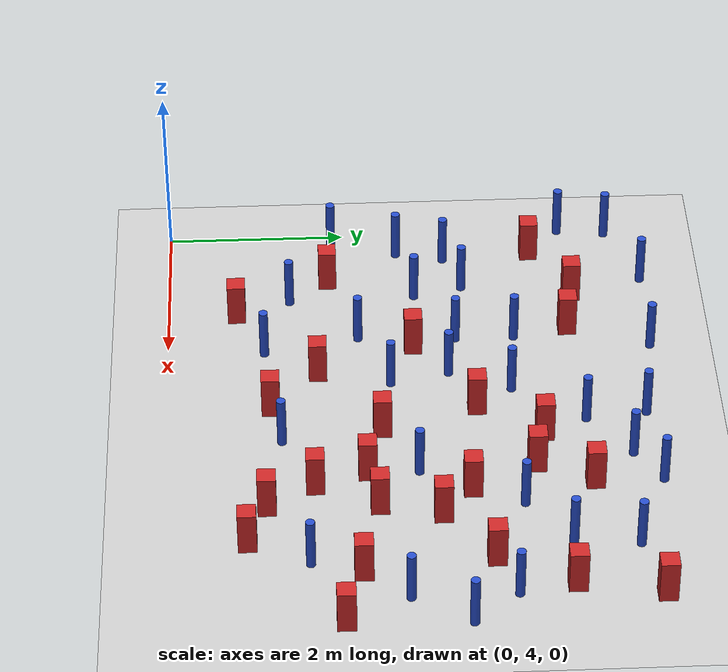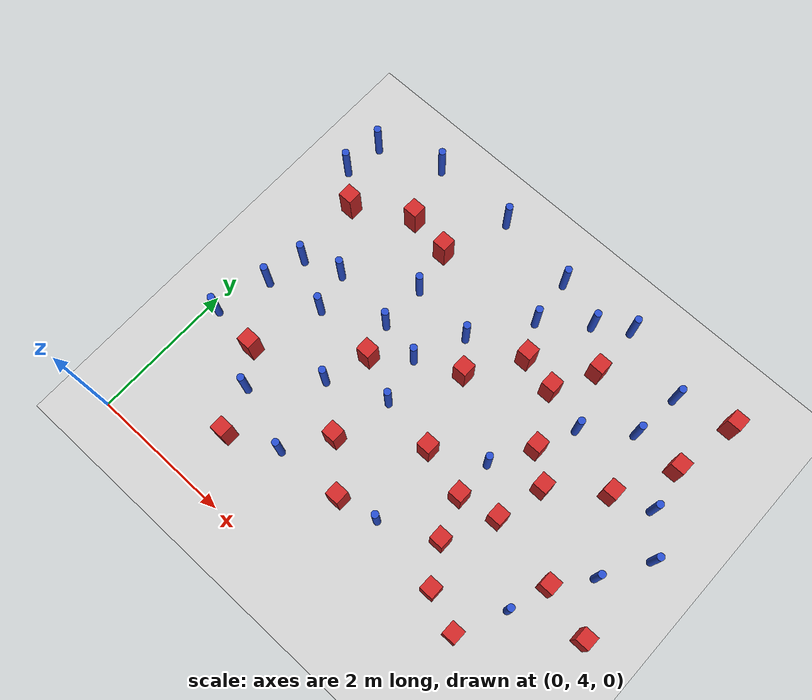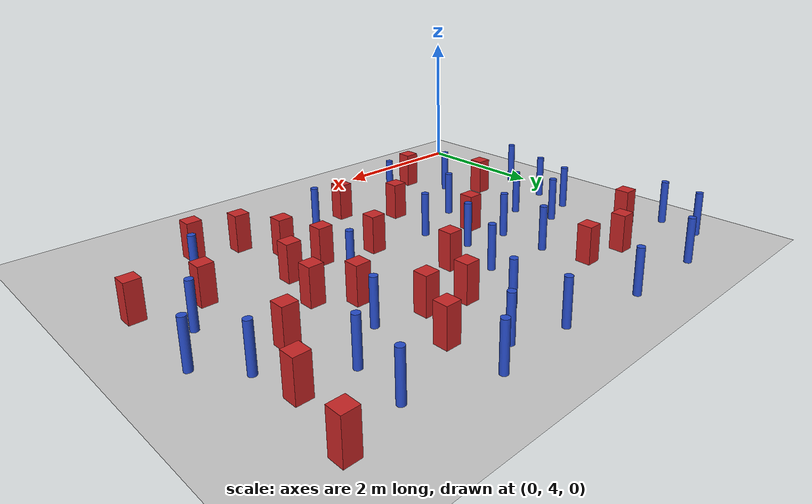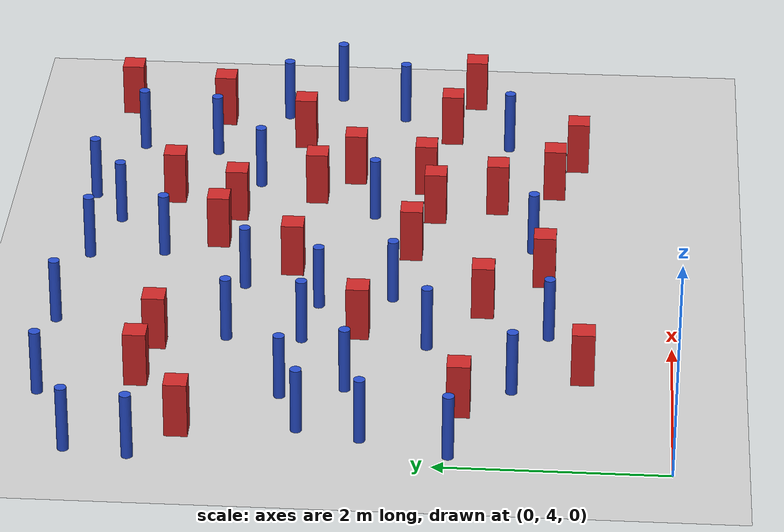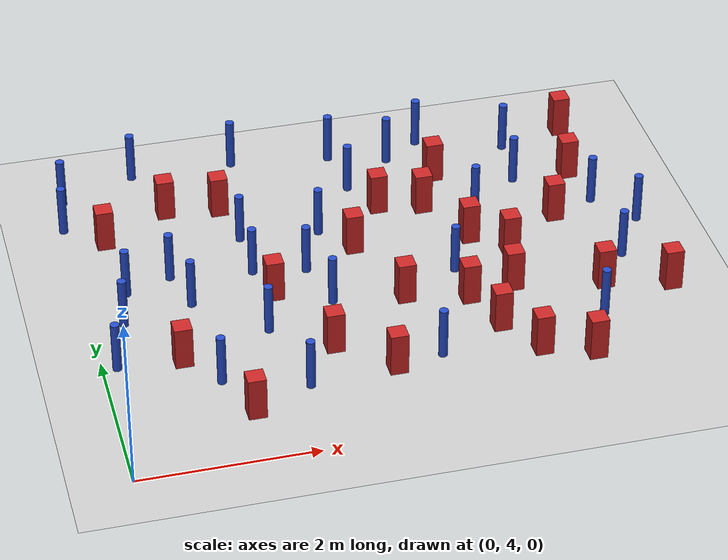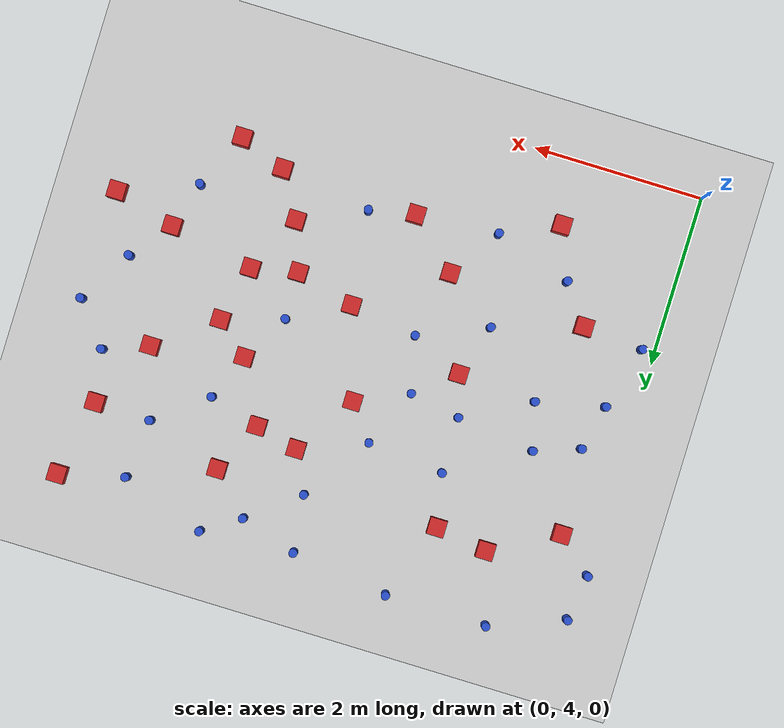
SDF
<sdf version="1.6">
 <world name="default">
  <model name="ground_plane">
   <static>1</static>
   <link name="link">
    <collision name="collision">
     <geometry><plane><normal>0 0 1</normal><size>100 100</size></plane></geometry>
     <surface><friction><ode><mu>100</mu><mu2>50</mu2></ode></friction></surface>
    </collision>
    <visual name="visual">
     <cast_shadows>0</cast_shadows>
     <geometry><plane><normal>0 0 1</normal><size>100 100</size></plane></geometry>
     <material>
      <ambient>1.0 1.0 1.0 1.0</ambient>
      <diffuse>0.8 0.8 0.8 1.0</diffuse>
      <specular>0.01 0.01 0.01 1.000000</specular>
     </material>
    </visual>
   </link>
  </model>
  <model name="pole_obstacle6">
   <static>true</static>
   <pose>5.31308044122 8.27978199342 2.88873142074e-08 -9.9053668967e-09 4.60219948993e-07 -1.20965994957e-07</pose>
   <link name="link">
    <pose>0 0 0.3 0 -0 0</pose>
    <inertial>
     <mass>1</mass>
     <inertia><ixx>0.145833</ixx><ixy>0</ixy><ixz>0</ixz><iyy>0.145833</iyy><iyz>0</iyz><izz>0.125</izz></inertia>
    </inertial>
    <collision name="collision">
     <geometry><cylinder><radius>0.05</radius><length>.6</length></cylinder></geometry>
    </collision>
    <visual name="visual">
     <geometry><cylinder><radius>0.05</radius><length>.6</length></cylinder></geometry>
     <material>
      <script><name>Gazebo/Blue</name><uri>file://media/materials/scripts/gazebo.material</uri></script>
     </material>
    </visual>
   </link>
  </model>
  <model name="square_post_obstacle20">
   <static>true</static>
   <pose>4.71864207288 6.27564636523 8.22691968438e-08 7.2212513382e-06 -7.54495500217e-07 2.29674213826e-05</pose>
   <link name="link">
    <pose>0 0 0.25 0 -0 0</pose>
    <inertial>
     <mass>100</mass>
     <inertia>
      <ixx>0.166667</ixx>
      <ixy>0</ixy>
      <ixz>0</ixz>
      <iyy>0.166667</iyy>
      <iyz>0</iyz>
      <izz>0.166667</izz>
     </inertia>
    </inertial>
    <collision name="collision"><geometry><box><size>.2 .2 .5</size></box></geometry></collision>
    <visual name="visual">
     <geometry><box><size>.2 .2 .5</size></box></geometry>
     <material>
      <script><name>Gazebo/Red</name><uri>file://media/materials/scripts/gazebo.material</uri></script>
     </material>
    </visual>
   </link>
  </model>
  <model name="pole_obstacle12">
   <static>true</static>
   <pose>1.02377601119 7.3422433045 2.88873142074e-08 -9.90536689905e-09 4.60219948988e-07 -1.20965994961e-07</pose>
   <link name="link">
    <pose>0 0 0.3 0 -0 0</pose>
    <inertial>
     <mass>1</mass>
     <inertia><ixx>0.145833</ixx><ixy>0</ixy><ixz>0</ixz><iyy>0.145833</iyy><iyz>0</iyz><izz>0.125</izz></inertia>
    </inertial>
    <collision name="collision">
     <geometry><cylinder><radius>0.05</radius><length>.6</length></cylinder></geometry>
    </collision>
    <visual name="visual">
     <geometry><cylinder><radius>0.05</radius><length>.6</length></cylinder></geometry>
     <material>
      <script><name>Gazebo/Blue</name><uri>file://media/materials/scripts/gazebo.material</uri></script>
     </material>
    </visual>
   </link>
  </model>
  <model name="square_post_obstacle22">
   <static>true</static>
   <pose>3.15596366017 7.39459218269 8.22691968438e-08 7.2212513382e-06 -7.54495500217e-07 2.29674213826e-05</pose>
   <link name="link">
    <pose>0 0 0.25 0 -0 0</pose>
    <inertial>
     <mass>100</mass>
     <inertia>
      <ixx>0.166667</ixx>
      <ixy>0</ixy>
      <ixz>0</ixz>
      <iyy>0.166667</iyy>
      <iyz>0</iyz>
      <izz>0.166667</izz>
     </inertia>
    </inertial>
    <collision name="collision"><geometry><box><size>.2 .2 .5</size></box></geometry></collision>
    <visual name="visual">
     <geometry><box><size>.2 .2 .5</size></box></geometry>
     <material>
      <script><name>Gazebo/Red</name><uri>file://media/materials/scripts/gazebo.material</uri></script>
     </material>
    </visual>
   </link>
  </model>
  <model name="square_post_obstacle25">
   <static>true</static>
   <pose>4.69491276514 5.0820935779 8.22691968438e-08 7.2212513382e-06 -7.54495500217e-07 2.29674213826e-05</pose>
   <link name="link">
    <pose>0 0 0.25 0 -0 0</pose>
    <inertial>
     <mass>100</mass>
     <inertia>
      <ixx>0.166667</ixx>
      <ixy>0</ixy>
      <ixz>0</ixz>
      <iyy>0.166667</iyy>
      <iyz>0</iyz>
      <izz>0.166667</izz>
     </inertia>
    </inertial>
    <collision name="collision"><geometry><box><size>.2 .2 .5</size></box></geometry></collision>
    <visual name="visual">
     <geometry><box><size>.2 .2 .5</size></box></geometry>
     <material>
      <script><name>Gazebo/Red</name><uri>file://media/materials/scripts/gazebo.material</uri></script>
     </material>
    </visual>
   </link>
  </model>
  <model name="square_post_obstacle26">
   <static>true</static>
   <pose>2.51529953633 5.66592591669 8.22691968438e-08 7.2212513382e-06 -7.54495500217e-07 2.29674213826e-05</pose>
   <link name="link">
    <pose>0 0 0.25 0 -0 0</pose>
    <inertial>
     <mass>100</mass>
     <inertia>
      <ixx>0.166667</ixx>
      <ixy>0</ixy>
      <ixz>0</ixz>
      <iyy>0.166667</iyy>
      <iyz>0</iyz>
      <izz>0.166667</izz>
     </inertia>
    </inertial>
    <collision name="collision"><geometry><box><size>.2 .2 .5</size></box></geometry></collision>
    <visual name="visual">
     <geometry><box><size>.2 .2 .5</size></box></geometry>
     <material>
      <script><name>Gazebo/Red</name><uri>file://media/materials/scripts/gazebo.material</uri></script>
     </material>
    </visual>
   </link>
  </model>
  <model name="square_post_obstacle27">
   <static>true</static>
   <pose>6.43822635185 5.87308014322 8.22691968438e-08 7.2212513382e-06 -7.54495500217e-07 2.29674213826e-05</pose>
   <link name="link">
    <pose>0 0 0.25 0 -0 0</pose>
    <inertial>
     <mass>100</mass>
     <inertia>
      <ixx>0.166667</ixx>
      <ixy>0</ixy>
      <ixz>0</ixz>
      <iyy>0.166667</iyy>
      <iyz>0</iyz>
      <izz>0.166667</izz>
     </inertia>
    </inertial>
    <collision name="collision"><geometry><box><size>.2 .2 .5</size></box></geometry></collision>
    <visual name="visual">
     <geometry><box><size>.2 .2 .5</size></box></geometry>
     <material>
      <script><name>Gazebo/Red</name><uri>file://media/materials/scripts/gazebo.material</uri></script>
     </material>
    </visual>
   </link>
  </model>
  <model name="pole_obstacle18">
   <static>true</static>
   <pose>2.69266483658 6.46979249328 2.88873142074e-08 -9.90536689859e-09 4.60219948989e-07 -1.20965994961e-07</pose>
   <link name="link">
    <pose>0 0 0.3 0 -0 0</pose>
    <inertial>
     <mass>1</mass>
     <inertia><ixx>0.145833</ixx><ixy>0</ixy><ixz>0</ixz><iyy>0.145833</iyy><iyz>0</iyz><izz>0.125</izz></inertia>
    </inertial>
    <collision name="collision">
     <geometry><cylinder><radius>0.05</radius><length>.6</length></cylinder></geometry>
    </collision>
    <visual name="visual">
     <geometry><cylinder><radius>0.05</radius><length>.6</length></cylinder></geometry>
     <material>
      <script><name>Gazebo/Blue</name><uri>file://media/materials/scripts/gazebo.material</uri></script>
     </material>
    </visual>
   </link>
  </model>
  <model name="square_post_obstacle32">
   <static>true</static>
   <pose>4.41538164967 8.58481042743 8.22691968438e-08 7.22125133819e-06 -7.54495500217e-07 2.29674213826e-05</pose>
   <link name="link">
    <pose>0 0 0.25 0 -0 0</pose>
    <inertial>
     <mass>100</mass>
     <inertia>
      <ixx>0.166667</ixx>
      <ixy>0</ixy>
      <ixz>0</ixz>
      <iyy>0.166667</iyy>
      <iyz>0</iyz>
      <izz>0.166667</izz>
     </inertia>
    </inertial>
    <collision name="collision"><geometry><box><size>.2 .2 .5</size></box></geometry></collision>
    <visual name="visual">
     <geometry><box><size>.2 .2 .5</size></box></geometry>
     <material>
      <script><name>Gazebo/Red</name><uri>file://media/materials/scripts/gazebo.material</uri></script>
     </material>
    </visual>
   </link>
  </model>
  <model name="pole_obstacle29">
   <static>true</static>
   <pose>5.54738437357 5.52844757061 2.88873142074e-08 -9.90536690842e-09 4.60219948965e-07 -1.20965994976e-07</pose>
   <link name="link">
    <pose>0 0 0.3 0 -0 0</pose>
    <inertial>
     <mass>1</mass>
     <inertia><ixx>0.145833</ixx><ixy>0</ixy><ixz>0</ixz><iyy>0.145833</iyy><iyz>0</iyz><izz>0.125</izz></inertia>
    </inertial>
    <collision name="collision">
     <geometry><cylinder><radius>0.05</radius><length>.6</length></cylinder></geometry>
    </collision>
    <visual name="visual">
     <geometry><cylinder><radius>0.05</radius><length>.6</length></cylinder></geometry>
     <material>
      <script><name>Gazebo/Blue</name><uri>file://media/materials/scripts/gazebo.material</uri></script>
     </material>
    </visual>
   </link>
  </model>
  <model name="square_post_obstacle35">
   <static>true</static>
   <pose>0.873529759677 5.81037200043 8.22691968438e-08 7.2212513382e-06 -7.54495500217e-07 2.29674213826e-05</pose>
   <link name="link">
    <pose>0 0 0.25 0 -0 0</pose>
    <inertial>
     <mass>100</mass>
     <inertia>
      <ixx>0.166667</ixx>
      <ixy>0</ixy>
      <ixz>0</ixz>
      <iyy>0.166667</iyy>
      <iyz>0</iyz>
      <izz>0.166667</izz>
     </inertia>
    </inertial>
    <collision name="collision"><geometry><box><size>.2 .2 .5</size></box></geometry></collision>
    <visual name="visual">
     <geometry><box><size>.2 .2 .5</size></box></geometry>
     <material>
      <script><name>Gazebo/Red</name><uri>file://media/materials/scripts/gazebo.material</uri></script>
     </material>
    </visual>
   </link>
  </model>
  <model name="square_post_obstacle38">
   <static>true</static>
   <pose>1.45187493972 4.77025773056 8.22691968438e-08 7.2212513382e-06 -7.54495500217e-07 2.29674213826e-05</pose>
   <link name="link">
    <pose>0 0 0.25 0 -0 0</pose>
    <inertial>
     <mass>100</mass>
     <inertia>
      <ixx>0.166667</ixx>
      <ixy>0</ixy>
      <ixz>0</ixz>
      <iyy>0.166667</iyy>
      <iyz>0</iyz>
      <izz>0.166667</izz>
     </inertia>
    </inertial>
    <collision name="collision"><geometry><box><size>.2 .2 .5</size></box></geometry></collision>
    <visual name="visual">
     <geometry><box><size>.2 .2 .5</size></box></geometry>
     <material>
      <script><name>Gazebo/Red</name><uri>file://media/materials/scripts/gazebo.material</uri></script>
     </material>
    </visual>
   </link>
  </model>
  <model name="square_post_obstacle48">
   <static>true</static>
   <pose>3.61810519773 8.10456772448 8.22691968438e-08 7.22125133819e-06 -7.54495500217e-07 2.29674213826e-05</pose>
   <link name="link">
    <pose>0 0 0.25 0 -0 0</pose>
    <inertial>
     <mass>100</mass>
     <inertia>
      <ixx>0.166667</ixx>
      <ixy>0</ixy>
      <ixz>0</ixz>
      <iyy>0.166667</iyy>
      <iyz>0</iyz>
      <izz>0.166667</izz>
     </inertia>
    </inertial>
    <collision name="collision"><geometry><box><size>.2 .2 .5</size></box></geometry></collision>
    <visual name="visual">
     <geometry><box><size>.2 .2 .5</size></box></geometry>
     <material>
      <script><name>Gazebo/Red</name><uri>file://media/materials/scripts/gazebo.material</uri></script>
     </material>
    </visual>
   </link>
  </model>
  <model name="pole_obstacle52">
   <static>true</static>
   <pose>5.38762395715 8.97889186097 2.88873142074e-08 -9.9053668967e-09 4.60219948993e-07 -1.20965994957e-07</pose>
   <link name="link">
    <pose>0 0 0.3 0 -0 0</pose>
    <inertial>
     <mass>1</mass>
     <inertia><ixx>0.145833</ixx><ixy>0</ixy><ixz>0</ixz><iyy>0.145833</iyy><iyz>0</iyz><izz>0.125</izz></inertia>
    </inertial>
    <collision name="collision">
     <geometry><cylinder><radius>0.05</radius><length>.6</length></cylinder></geometry>
    </collision>
    <visual name="visual">
     <geometry><cylinder><radius>0.05</radius><length>.6</length></cylinder></geometry>
     <material>
      <script><name>Gazebo/Blue</name><uri>file://media/materials/scripts/gazebo.material</uri></script>
     </material>
    </visual>
   </link>
  </model>
  <model name="pole_obstacle54">
   <static>true</static>
   <pose>1.94755569017 7.224054917 2.88873142074e-08 -9.90536689852e-09 4.60219948989e-07 -1.2096599496e-07</pose>
   <link name="link">
    <pose>0 0 0.3 0 -0 0</pose>
    <inertial>
     <mass>1</mass>
     <inertia><ixx>0.145833</ixx><ixy>0</ixy><ixz>0</ixz><iyy>0.145833</iyy><iyz>0</iyz><izz>0.125</izz></inertia>
    </inertial>
    <collision name="collision">
     <geometry><cylinder><radius>0.05</radius><length>.6</length></cylinder></geometry>
    </collision>
    <visual name="visual">
     <geometry><cylinder><radius>0.05</radius><length>.6</length></cylinder></geometry>
     <material>
      <script><name>Gazebo/Blue</name><uri>file://media/materials/scripts/gazebo.material</uri></script>
     </material>
    </visual>
   </link>
  </model>
  <model name="pole_obstacle55">
   <static>true</static>
   <pose>3.30329874882 9.24865683714 2.88873142074e-08 -9.90536692318e-09 4.6021994893e-07 -1.20965994988e-07</pose>
   <link name="link">
    <pose>0 0 0.3 0 -0 0</pose>
    <inertial>
     <mass>1</mass>
     <inertia><ixx>0.145833</ixx><ixy>0</ixy><ixz>0</ixz><iyy>0.145833</iyy><iyz>0</iyz><izz>0.125</izz></inertia>
    </inertial>
    <collision name="collision">
     <geometry><cylinder><radius>0.05</radius><length>.6</length></cylinder></geometry>
    </collision>
    <visual name="visual">
     <geometry><cylinder><radius>0.05</radius><length>.6</length></cylinder></geometry>
     <material>
      <script><name>Gazebo/Blue</name><uri>file://media/materials/scripts/gazebo.material</uri></script>
     </material>
    </visual>
   </link>
  </model>
  <model name="pole_obstacle57">
   <static>true</static>
   <pose>1.16421838997 6.794843173 2.88873142074e-08 -9.90536689852e-09 4.60219948989e-07 -1.2096599496e-07</pose>
   <link name="link">
    <pose>0 0 0.3 0 -0 0</pose>
    <inertial>
     <mass>1</mass>
     <inertia><ixx>0.145833</ixx><ixy>0</ixy><ixz>0</ixz><iyy>0.145833</iyy><iyz>0</iyz><izz>0.125</izz></inertia>
    </inertial>
    <collision name="collision">
     <geometry><cylinder><radius>0.05</radius><length>.6</length></cylinder></geometry>
    </collision>
    <visual name="visual">
     <geometry><cylinder><radius>0.05</radius><length>.6</length></cylinder></geometry>
     <material>
      <script><name>Gazebo/Blue</name><uri>file://media/materials/scripts/gazebo.material</uri></script>
     </material>
    </visual>
   </link>
  </model>
  <model name="square_post_obstacle61">
   <static>true</static>
   <pose>0.428363525869 8.15563954563 8.22691968438e-08 7.22125133819e-06 -7.54495500217e-07 2.29674213826e-05</pose>
   <link name="link">
    <pose>0 0 0.25 0 -0 0</pose>
    <inertial>
     <mass>100</mass>
     <inertia>
      <ixx>0.166667</ixx>
      <ixy>0</ixy>
      <ixz>0</ixz>
      <iyy>0.166667</iyy>
      <iyz>0</iyz>
      <izz>0.166667</izz>
     </inertia>
    </inertial>
    <collision name="collision"><geometry><box><size>.2 .2 .5</size></box></geometry></collision>
    <visual name="visual">
     <geometry><box><size>.2 .2 .5</size></box></geometry>
     <material>
      <script><name>Gazebo/Red</name><uri>file://media/materials/scripts/gazebo.material</uri></script>
     </material>
    </visual>
   </link>
  </model>
  <model name="square_post_obstacle66">
   <static>true</static>
   <pose>3.49016715374 6.34727573934 8.22691968438e-08 7.2212513382e-06 -7.54495500217e-07 2.29674213826e-05</pose>
   <link name="link">
    <pose>0 0 0.25 0 -0 0</pose>
    <inertial>
     <mass>100</mass>
     <inertia>
      <ixx>0.166667</ixx>
      <ixy>0</ixy>
      <ixz>0</ixz>
      <iyy>0.166667</iyy>
      <iyz>0</iyz>
      <izz>0.166667</izz>
     </inertia>
    </inertial>
    <collision name="collision"><geometry><box><size>.2 .2 .5</size></box></geometry></collision>
    <visual name="visual">
     <geometry><box><size>.2 .2 .5</size></box></geometry>
     <material>
      <script><name>Gazebo/Red</name><uri>file://media/materials/scripts/gazebo.material</uri></script>
     </material>
    </visual>
   </link>
  </model>
  <model name="pole_obstacle65">
   <static>true</static>
   <pose>1.89303313247 6.12987572113 2.88873142074e-08 -9.90536689852e-09 4.60219948989e-07 -1.2096599496e-07</pose>
   <link name="link">
    <pose>0 0 0.3 0 -0 0</pose>
    <inertial>
     <mass>1</mass>
     <inertia><ixx>0.145833</ixx><ixy>0</ixy><ixz>0</ixz><iyy>0.145833</iyy><iyz>0</iyz><izz>0.125</izz></inertia>
    </inertial>
    <collision name="collision">
     <geometry><cylinder><radius>0.05</radius><length>.6</length></cylinder></geometry>
    </collision>
    <visual name="visual">
     <geometry><cylinder><radius>0.05</radius><length>.6</length></cylinder></geometry>
     <material>
      <script><name>Gazebo/Blue</name><uri>file://media/materials/scripts/gazebo.material</uri></script>
     </material>
    </visual>
   </link>
  </model>
  <model name="square_post_obstacle71">
   <static>true</static>
   <pose>4.38129100026 5.60016514436 8.22691968438e-08 7.2212513382e-06 -7.54495500217e-07 2.29674213826e-05</pose>
   <link name="link">
    <pose>0 0 0.25 0 -0 0</pose>
    <inertial>
     <mass>100</mass>
     <inertia>
      <ixx>0.166667</ixx>
      <ixy>0</ixy>
      <ixz>0</ixz>
      <iyy>0.166667</iyy>
      <iyz>0</iyz>
      <izz>0.166667</izz>
     </inertia>
    </inertial>
    <collision name="collision"><geometry><box><size>.2 .2 .5</size></box></geometry></collision>
    <visual name="visual">
     <geometry><box><size>.2 .2 .5</size></box></geometry>
     <material>
      <script><name>Gazebo/Red</name><uri>file://media/materials/scripts/gazebo.material</uri></script>
     </material>
    </visual>
   </link>
  </model>
  <model name="square_post_obstacle74">
   <static>true</static>
   <pose>1.81810105548 8.49362627299 8.22691968438e-08 7.22125133819e-06 -7.54495500217e-07 2.29674213826e-05</pose>
   <link name="link">
    <pose>0 0 0.25 0 -0 0</pose>
    <inertial>
     <mass>100</mass>
     <inertia>
      <ixx>0.166667</ixx>
      <ixy>0</ixy>
      <ixz>0</ixz>
      <iyy>0.166667</iyy>
      <iyz>0</iyz>
      <izz>0.166667</izz>
     </inertia>
    </inertial>
    <collision name="collision"><geometry><box><size>.2 .2 .5</size></box></geometry></collision>
    <visual name="visual">
     <geometry><box><size>.2 .2 .5</size></box></geometry>
     <material>
      <script><name>Gazebo/Red</name><uri>file://media/materials/scripts/gazebo.material</uri></script>
     </material>
    </visual>
   </link>
  </model>
  <model name="pole_obstacle70">
   <static>true</static>
   <pose>6.47292405263 7.17064626257 2.88873142074e-08 -9.90536690842e-09 4.60219948965e-07 -1.20965994976e-07</pose>
   <link name="link">
    <pose>0 0 0.3 0 -0 0</pose>
    <inertial>
     <mass>1</mass>
     <inertia><ixx>0.145833</ixx><ixy>0</ixy><ixz>0</ixz><iyy>0.145833</iyy><iyz>0</iyz><izz>0.125</izz></inertia>
    </inertial>
    <collision name="collision">
     <geometry><cylinder><radius>0.05</radius><length>.6</length></cylinder></geometry>
    </collision>
    <visual name="visual">
     <geometry><cylinder><radius>0.05</radius><length>.6</length></cylinder></geometry>
     <material>
      <script><name>Gazebo/Blue</name><uri>file://media/materials/scripts/gazebo.material</uri></script>
     </material>
    </visual>
   </link>
  </model>
  <model name="pole_obstacle76">
   <static>true</static>
   <pose>0.0853970170627 9.07294385181 2.88873142074e-08 -9.90536691014e-09 4.60219948961e-07 -1.20965994979e-07</pose>
   <link name="link">
    <pose>0 0 0.3 0 -0 0</pose>
    <inertial>
     <mass>1</mass>
     <inertia><ixx>0.145833</ixx><ixy>0</ixy><ixz>0</ixz><iyy>0.145833</iyy><iyz>0</iyz><izz>0.125</izz></inertia>
    </inertial>
    <collision name="collision">
     <geometry><cylinder><radius>0.05</radius><length>.6</length></cylinder></geometry>
    </collision>
    <visual name="visual">
     <geometry><cylinder><radius>0.05</radius><length>.6</length></cylinder></geometry>
     <material>
      <script><name>Gazebo/Blue</name><uri>file://media/materials/scripts/gazebo.material</uri></script>
     </material>
    </visual>
   </link>
  </model>
  <model name="pole_obstacle83">
   <static>true</static>
   <pose>0.496366654373 7.15667605217 2.88873142074e-08 -9.90536689616e-09 4.60219948994e-07 -1.20965994955e-07</pose>
   <link name="link">
    <pose>0 0 0.3 0 -0 0</pose>
    <inertial>
     <mass>1</mass>
     <inertia><ixx>0.145833</ixx><ixy>0</ixy><ixz>0</ixz><iyy>0.145833</iyy><iyz>0</iyz><izz>0.125</izz></inertia>
    </inertial>
    <collision name="collision">
     <geometry><cylinder><radius>0.05</radius><length>.6</length></cylinder></geometry>
    </collision>
    <visual name="visual">
     <geometry><cylinder><radius>0.05</radius><length>.6</length></cylinder></geometry>
     <material>
      <script><name>Gazebo/Blue</name><uri>file://media/materials/scripts/gazebo.material</uri></script>
     </material>
    </visual>
   </link>
  </model>
  <model name="pole_obstacle84">
   <static>true</static>
   <pose>3.62301518717 5.25335932224 2.88873142074e-08 -9.90536689859e-09 4.60219948989e-07 -1.20965994961e-07</pose>
   <link name="link">
    <pose>0 0 0.3 0 -0 0</pose>
    <inertial>
     <mass>1</mass>
     <inertia><ixx>0.145833</ixx><ixy>0</ixy><ixz>0</ixz><iyy>0.145833</iyy><iyz>0</iyz><izz>0.125</izz></inertia>
    </inertial>
    <collision name="collision">
     <geometry><cylinder><radius>0.05</radius><length>.6</length></cylinder></geometry>
    </collision>
    <visual name="visual">
     <geometry><cylinder><radius>0.05</radius><length>.6</length></cylinder></geometry>
     <material>
      <script><name>Gazebo/Blue</name><uri>file://media/materials/scripts/gazebo.material</uri></script>
     </material>
    </visual>
   </link>
  </model>
  <model name="pole_obstacle99">
   <static>true</static>
   <pose>1.20975883211 5.37112997354 2.88873142074e-08 -9.90536689852e-09 4.60219948989e-07 -1.2096599496e-07</pose>
   <link name="link">
    <pose>0 0 0.3 0 -0 0</pose>
    <inertial>
     <mass>1</mass>
     <inertia><ixx>0.145833</ixx><ixy>0</ixy><ixz>0</ixz><iyy>0.145833</iyy><iyz>0</iyz><izz>0.125</izz></inertia>
    </inertial>
    <collision name="collision">
     <geometry><cylinder><radius>0.05</radius><length>.6</length></cylinder></geometry>
    </collision>
    <visual name="visual">
     <geometry><cylinder><radius>0.05</radius><length>.6</length></cylinder></geometry>
     <material>
      <script><name>Gazebo/Blue</name><uri>file://media/materials/scripts/gazebo.material</uri></script>
     </material>
    </visual>
   </link>
  </model>
  <model name="square_post_obstacle91">
   <static>true</static>
   <pose>4.12195848372 7.98323023558 8.22691968438e-08 7.22125133819e-06 -7.54495500217e-07 2.29674213826e-05</pose>
   <link name="link">
    <pose>0 0 0.25 0 -0 0</pose>
    <inertial>
     <mass>100</mass>
     <inertia>
      <ixx>0.166667</ixx>
      <ixy>0</ixy>
      <ixz>0</ixz>
      <iyy>0.166667</iyy>
      <iyz>0</iyz>
      <izz>0.166667</izz>
     </inertia>
    </inertial>
    <collision name="collision"><geometry><box><size>.2 .2 .5</size></box></geometry></collision>
    <visual name="visual">
     <geometry><box><size>.2 .2 .5</size></box></geometry>
     <material>
      <script><name>Gazebo/Red</name><uri>file://media/materials/scripts/gazebo.material</uri></script>
     </material>
    </visual>
   </link>
  </model>
  <model name="pole_obstacle104">
   <static>true</static>
   <pose>6.08810250426 6.5437369884 2.88873142074e-08 -9.90536690842e-09 4.60219948965e-07 -1.20965994976e-07</pose>
   <link name="link">
    <pose>0 0 0.3 0 -0 0</pose>
    <inertial>
     <mass>1</mass>
     <inertia><ixx>0.145833</ixx><ixy>0</ixy><ixz>0</ixz><iyy>0.145833</iyy><iyz>0</iyz><izz>0.125</izz></inertia>
    </inertial>
    <collision name="collision">
     <geometry><cylinder><radius>0.05</radius><length>.6</length></cylinder></geometry>
    </collision>
    <visual name="visual">
     <geometry><cylinder><radius>0.05</radius><length>.6</length></cylinder></geometry>
     <material>
      <script><name>Gazebo/Blue</name><uri>file://media/materials/scripts/gazebo.material</uri></script>
     </material>
    </visual>
   </link>
  </model>
  <model name="pole_obstacle106">
   <static>true</static>
   <pose>0.959039988661 9.41166130799 2.88873142074e-08 -9.9053669105e-09 4.6021994896e-07 -1.20965994979e-07</pose>
   <link name="link">
    <pose>0 0 0.3 0 -0 0</pose>
    <inertial>
     <mass>1</mass>
     <inertia><ixx>0.145833</ixx><ixy>0</ixy><ixz>0</ixz><iyy>0.145833</iyy><iyz>0</iyz><izz>0.125</izz></inertia>
    </inertial>
    <collision name="collision">
     <geometry><cylinder><radius>0.05</radius><length>.6</length></cylinder></geometry>
    </collision>
    <visual name="visual">
     <geometry><cylinder><radius>0.05</radius><length>.6</length></cylinder></geometry>
     <material>
      <script><name>Gazebo/Blue</name><uri>file://media/materials/scripts/gazebo.material</uri></script>
     </material>
    </visual>
   </link>
  </model>
  <model name="pole_obstacle111">
   <static>true</static>
   <pose>4.16835198203 6.71993965331 2.88873142074e-08 -9.90536690842e-09 4.60219948965e-07 -1.20965994976e-07</pose>
   <link name="link">
    <pose>0 0 0.3 0 -0 0</pose>
    <inertial>
     <mass>1</mass>
     <inertia><ixx>0.145833</ixx><ixy>0</ixy><ixz>0</ixz><iyy>0.145833</iyy><iyz>0</iyz><izz>0.125</izz></inertia>
    </inertial>
    <collision name="collision">
     <geometry><cylinder><radius>0.05</radius><length>.6</length></cylinder></geometry>
    </collision>
    <visual name="visual">
     <geometry><cylinder><radius>0.05</radius><length>.6</length></cylinder></geometry>
     <material>
      <script><name>Gazebo/Blue</name><uri>file://media/materials/scripts/gazebo.material</uri></script>
     </material>
    </visual>
   </link>
  </model>
  <model name="pole_obstacle114">
   <static>true</static>
   <pose>2.11659757589 5.075991091 2.88873142074e-08 -9.90536689859e-09 4.60219948989e-07 -1.20965994961e-07</pose>
   <link name="link">
    <pose>0 0 0.3 0 -0 0</pose>
    <inertial>
     <mass>1</mass>
     <inertia><ixx>0.145833</ixx><ixy>0</ixy><ixz>0</ixz><iyy>0.145833</iyy><iyz>0</iyz><izz>0.125</izz></inertia>
    </inertial>
    <collision name="collision">
     <geometry><cylinder><radius>0.05</radius><length>.6</length></cylinder></geometry>
    </collision>
    <visual name="visual">
     <geometry><cylinder><radius>0.05</radius><length>.6</length></cylinder></geometry>
     <material>
      <script><name>Gazebo/Blue</name><uri>file://media/materials/scripts/gazebo.material</uri></script>
     </material>
    </visual>
   </link>
  </model>
  <model name="pole_obstacle123">
   <static>true</static>
   <pose>4.4009094587 9.32517485265 2.88873142074e-08 -9.9053668967e-09 4.60219948993e-07 -1.20965994957e-07</pose>
   <link name="link">
    <pose>0 0 0.3 0 -0 0</pose>
    <inertial>
     <mass>1</mass>
     <inertia><ixx>0.145833</ixx><ixy>0</ixy><ixz>0</ixz><iyy>0.145833</iyy><iyz>0</iyz><izz>0.125</izz></inertia>
    </inertial>
    <collision name="collision">
     <geometry><cylinder><radius>0.05</radius><length>.6</length></cylinder></geometry>
    </collision>
    <visual name="visual">
     <geometry><cylinder><radius>0.05</radius><length>.6</length></cylinder></geometry>
     <material>
      <script><name>Gazebo/Blue</name><uri>file://media/materials/scripts/gazebo.material</uri></script>
     </material>
    </visual>
   </link>
  </model>
  <model name="pole_obstacle124">
   <static>true</static>
   <pose>6.0772936584 7.65908223381 2.88873142074e-08 -9.90536690842e-09 4.60219948965e-07 -1.20965994976e-07</pose>
   <link name="link">
    <pose>0 0 0.3 0 -0 0</pose>
    <inertial>
     <mass>1</mass>
     <inertia><ixx>0.145833</ixx><ixy>0</ixy><ixz>0</ixz><iyy>0.145833</iyy><iyz>0</iyz><izz>0.125</izz></inertia>
    </inertial>
    <collision name="collision">
     <geometry><cylinder><radius>0.05</radius><length>.6</length></cylinder></geometry>
    </collision>
    <visual name="visual">
     <geometry><cylinder><radius>0.05</radius><length>.6</length></cylinder></geometry>
     <material>
      <script><name>Gazebo/Blue</name><uri>file://media/materials/scripts/gazebo.material</uri></script>
     </material>
    </visual>
   </link>
  </model>
  <model name="square_post_obstacle113">
   <static>true</static>
   <pose>4.18167712047 6.16370554471 8.22691968438e-08 7.2212513382e-06 -7.54495500217e-07 2.29674213826e-05</pose>
   <link name="link">
    <pose>0 0 0.25 0 -0 0</pose>
    <inertial>
     <mass>100</mass>
     <inertia>
      <ixx>0.166667</ixx>
      <ixy>0</ixy>
      <ixz>0</ixz>
      <iyy>0.166667</iyy>
      <iyz>0</iyz>
      <izz>0.166667</izz>
     </inertia>
    </inertial>
    <collision name="collision"><geometry><box><size>.2 .2 .5</size></box></geometry></collision>
    <visual name="visual">
     <geometry><box><size>.2 .2 .5</size></box></geometry>
     <material>
      <script><name>Gazebo/Red</name><uri>file://media/materials/scripts/gazebo.material</uri></script>
     </material>
    </visual>
   </link>
  </model>
  <model name="square_post_obstacle114">
   <static>true</static>
   <pose>5.55691024768 7.45956543963 8.22691968438e-08 7.2212513382e-06 -7.54495500217e-07 2.29674213826e-05</pose>
   <link name="link">
    <pose>0 0 0.25 0 -0 0</pose>
    <inertial>
     <mass>100</mass>
     <inertia>
      <ixx>0.166667</ixx>
      <ixy>0</ixy>
      <ixz>0</ixz>
      <iyy>0.166667</iyy>
      <iyz>0</iyz>
      <izz>0.166667</izz>
     </inertia>
    </inertial>
    <collision name="collision"><geometry><box><size>.2 .2 .5</size></box></geometry></collision>
    <visual name="visual">
     <geometry><box><size>.2 .2 .5</size></box></geometry>
     <material>
      <script><name>Gazebo/Red</name><uri>file://media/materials/scripts/gazebo.material</uri></script>
     </material>
    </visual>
   </link>
  </model>
  <model name="pole_obstacle130">
   <static>true</static>
   <pose>2.84204201239 7.7967569486 2.88873142074e-08 -9.90536689859e-09 4.60219948989e-07 -1.20965994961e-07</pose>
   <link name="link">
    <pose>0 0 0.3 0 -0 0</pose>
    <inertial>
     <mass>1</mass>
     <inertia><ixx>0.145833</ixx><ixy>0</ixy><ixz>0</ixz><iyy>0.145833</iyy><iyz>0</iyz><izz>0.125</izz></inertia>
    </inertial>
    <collision name="collision">
     <geometry><cylinder><radius>0.05</radius><length>.6</length></cylinder></geometry>
    </collision>
    <visual name="visual">
     <geometry><cylinder><radius>0.05</radius><length>.6</length></cylinder></geometry>
     <material>
      <script><name>Gazebo/Blue</name><uri>file://media/materials/scripts/gazebo.material</uri></script>
     </material>
    </visual>
   </link>
  </model>
  <model name="pole_obstacle138">
   <static>true</static>
   <pose>0.371326742022 6.61678249945 2.88873142074e-08 -9.90536689683e-09 4.60219948993e-07 -1.20965994957e-07</pose>
   <link name="link">
    <pose>0 0 0.3 0 -0 0</pose>
    <inertial>
     <mass>1</mass>
     <inertia><ixx>0.145833</ixx><ixy>0</ixy><ixz>0</ixz><iyy>0.145833</iyy><iyz>0</iyz><izz>0.125</izz></inertia>
    </inertial>
    <collision name="collision">
     <geometry><cylinder><radius>0.05</radius><length>.6</length></cylinder></geometry>
    </collision>
    <visual name="visual">
     <geometry><cylinder><radius>0.05</radius><length>.6</length></cylinder></geometry>
     <material>
      <script><name>Gazebo/Blue</name><uri>file://media/materials/scripts/gazebo.material</uri></script>
     </material>
    </visual>
   </link>
  </model>
  <model name="square_post_obstacle128">
   <static>true</static>
   <pose>6.15033665714 9.16821997569 8.22691968438e-08 7.22125133819e-06 -7.54495500217e-07 2.29674213826e-05</pose>
   <link name="link">
    <pose>0 0 0.25 0 -0 0</pose>
    <inertial>
     <mass>100</mass>
     <inertia>
      <ixx>0.166667</ixx>
      <ixy>0</ixy>
      <ixz>0</ixz>
      <iyy>0.166667</iyy>
      <iyz>0</iyz>
      <izz>0.166667</izz>
     </inertia>
    </inertial>
    <collision name="collision"><geometry><box><size>.2 .2 .5</size></box></geometry></collision>
    <visual name="visual">
     <geometry><box><size>.2 .2 .5</size></box></geometry>
     <material>
      <script><name>Gazebo/Red</name><uri>file://media/materials/scripts/gazebo.material</uri></script>
     </material>
    </visual>
   </link>
  </model>
  <model name="square_post_obstacle136">
   <static>true</static>
   <pose>5.23944265382 4.87423321225 8.22691968438e-08 7.2212513382e-06 -7.54495500217e-07 2.29674213826e-05</pose>
   <link name="link">
    <pose>0 0 0.25 0 -0 0</pose>
    <inertial>
     <mass>100</mass>
     <inertia>
      <ixx>0.166667</ixx>
      <ixy>0</ixy>
      <ixz>0</ixz>
      <iyy>0.166667</iyy>
      <iyz>0</iyz>
      <izz>0.166667</izz>
     </inertia>
    </inertial>
    <collision name="collision"><geometry><box><size>.2 .2 .5</size></box></geometry></collision>
    <visual name="visual">
     <geometry><box><size>.2 .2 .5</size></box></geometry>
     <material>
      <script><name>Gazebo/Red</name><uri>file://media/materials/scripts/gazebo.material</uri></script>
     </material>
    </visual>
   </link>
  </model>
  <model name="pole_obstacle146">
   <static>true</static>
   <pose>0.0102926345383 8.5278449402 2.88873142074e-08 -9.90536690865e-09 4.60219948965e-07 -1.20965994977e-07</pose>
   <link name="link">
    <pose>0 0 0.3 0 -0 0</pose>
    <inertial>
     <mass>1</mass>
     <inertia><ixx>0.145833</ixx><ixy>0</ixy><ixz>0</ixz><iyy>0.145833</iyy><iyz>0</iyz><izz>0.125</izz></inertia>
    </inertial>
    <collision name="collision">
     <geometry><cylinder><radius>0.05</radius><length>.6</length></cylinder></geometry>
    </collision>
    <visual name="visual">
     <geometry><cylinder><radius>0.05</radius><length>.6</length></cylinder></geometry>
     <material>
      <script><name>Gazebo/Blue</name><uri>file://media/materials/scripts/gazebo.material</uri></script>
     </material>
    </visual>
   </link>
  </model>
  <model name="pole_obstacle152">
   <static>true</static>
   <pose>3.38099773657 8.58028609656 2.88873142074e-08 -9.90536692318e-09 4.6021994893e-07 -1.20965994988e-07</pose>
   <link name="link">
    <pose>0 0 0.3 0 -0 0</pose>
    <inertial>
     <mass>1</mass>
     <inertia><ixx>0.145833</ixx><ixy>0</ixy><ixz>0</ixz><iyy>0.145833</iyy><iyz>0</iyz><izz>0.125</izz></inertia>
    </inertial>
    <collision name="collision">
     <geometry><cylinder><radius>0.05</radius><length>.6</length></cylinder></geometry>
    </collision>
    <visual name="visual">
     <geometry><cylinder><radius>0.05</radius><length>.6</length></cylinder></geometry>
     <material>
      <script><name>Gazebo/Blue</name><uri>file://media/materials/scripts/gazebo.material</uri></script>
     </material>
    </visual>
   </link>
  </model>
  <model name="square_post_obstacle149">
   <static>true</static>
   <pose>4.49034944011 7.27307163148 8.22691968438e-08 7.2212513382e-06 -7.54495500217e-07 2.29674213826e-05</pose>
   <link name="link">
    <pose>0 0 0.25 0 -0 0</pose>
    <inertial>
     <mass>100</mass>
     <inertia>
      <ixx>0.166667</ixx>
      <ixy>0</ixy>
      <ixz>0</ixz>
      <iyy>0.166667</iyy>
      <iyz>0</iyz>
      <izz>0.166667</izz>
     </inertia>
    </inertial>
    <collision name="collision"><geometry><box><size>.2 .2 .5</size></box></geometry></collision>
    <visual name="visual">
     <geometry><box><size>.2 .2 .5</size></box></geometry>
     <material>
      <script><name>Gazebo/Red</name><uri>file://media/materials/scripts/gazebo.material</uri></script>
     </material>
    </visual>
   </link>
  </model>
  <model name="pole_obstacle160">
   <static>true</static>
   <pose>3.96798585636 9.04040831317 2.88873142074e-08 -9.90536692324e-09 4.6021994893e-07 -1.20965994987e-07</pose>
   <link name="link">
    <pose>0 0 0.3 0 -0 0</pose>
    <inertial>
     <mass>1</mass>
     <inertia><ixx>0.145833</ixx><ixy>0</ixy><ixz>0</ixz><iyy>0.145833</iyy><iyz>0</iyz><izz>0.125</izz></inertia>
    </inertial>
    <collision name="collision">
     <geometry><cylinder><radius>0.05</radius><length>.6</length></cylinder></geometry>
    </collision>
    <visual name="visual">
     <geometry><cylinder><radius>0.05</radius><length>.6</length></cylinder></geometry>
     <material>
      <script><name>Gazebo/Blue</name><uri>file://media/materials/scripts/gazebo.material</uri></script>
     </material>
    </visual>
   </link>
  </model>
  <model name="square_post_obstacle156">
   <static>true</static>
   <pose>3.08453168595 5.13875340303 8.22691968438e-08 7.2212513382e-06 -7.54495500217e-07 2.29674213826e-05</pose>
   <link name="link">
    <pose>0 0 0.25 0 -0 0</pose>
    <inertial>
     <mass>100</mass>
     <inertia>
      <ixx>0.166667</ixx>
      <ixy>0</ixy>
      <ixz>0</ixz>
      <iyy>0.166667</iyy>
      <iyz>0</iyz>
      <izz>0.166667</izz>
     </inertia>
    </inertial>
    <collision name="collision"><geometry><box><size>.2 .2 .5</size></box></geometry></collision>
    <visual name="visual">
     <geometry><box><size>.2 .2 .5</size></box></geometry>
     <material>
      <script><name>Gazebo/Red</name><uri>file://media/materials/scripts/gazebo.material</uri></script>
     </material>
    </visual>
   </link>
  </model>
  <model name="pole_obstacle164">
   <static>true</static>
   <pose>0.163837074784 5.86693005997 2.88873142074e-08 -9.90536689843e-09 4.60219948989e-07 -1.20965994962e-07</pose>
   <link name="link">
    <pose>0 0 0.3 0 -0 0</pose>
    <inertial>
     <mass>1</mass>
     <inertia><ixx>0.145833</ixx><ixy>0</ixy><ixz>0</ixz><iyy>0.145833</iyy><iyz>0</iyz><izz>0.125</izz></inertia>
    </inertial>
    <collision name="collision">
     <geometry><cylinder><radius>0.05</radius><length>.6</length></cylinder></geometry>
    </collision>
    <visual name="visual">
     <geometry><cylinder><radius>0.05</radius><length>.6</length></cylinder></geometry>
     <material>
      <script><name>Gazebo/Blue</name><uri>file://media/materials/scripts/gazebo.material</uri></script>
     </material>
    </visual>
   </link>
  </model>
  <model name="pole_obstacle168">
   <static>true</static>
   <pose>1.94333715501 7.88326278894 2.88873142074e-08 -9.90536689852e-09 4.60219948989e-07 -1.2096599496e-07</pose>
   <link name="link">
    <pose>0 0 0.3 0 -0 0</pose>
    <inertial>
     <mass>1</mass>
     <inertia><ixx>0.145833</ixx><ixy>0</ixy><ixz>0</ixz><iyy>0.145833</iyy><iyz>0</iyz><izz>0.125</izz></inertia>
    </inertial>
    <collision name="collision">
     <geometry><cylinder><radius>0.05</radius><length>.6</length></cylinder></geometry>
    </collision>
    <visual name="visual">
     <geometry><cylinder><radius>0.05</radius><length>.6</length></cylinder></geometry>
     <material>
      <script><name>Gazebo/Blue</name><uri>file://media/materials/scripts/gazebo.material</uri></script>
     </material>
    </visual>
   </link>
  </model>
  <model name="square_post_obstacle164">
   <static>true</static>
   <pose>5.97141423594 8.26130172466 8.22691968438e-08 7.22125133819e-06 -7.54495500217e-07 2.29674213826e-05</pose>
   <link name="link">
    <pose>0 0 0.25 0 -0 0</pose>
    <inertial>
     <mass>100</mass>
     <inertia>
      <ixx>0.166667</ixx>
      <ixy>0</ixy>
      <ixz>0</ixz>
      <iyy>0.166667</iyy>
      <iyz>0</iyz>
      <izz>0.166667</izz>
     </inertia>
    </inertial>
    <collision name="collision"><geometry><box><size>.2 .2 .5</size></box></geometry></collision>
    <visual name="visual">
     <geometry><box><size>.2 .2 .5</size></box></geometry>
     <material>
      <script><name>Gazebo/Red</name><uri>file://media/materials/scripts/gazebo.material</uri></script>
     </material>
    </visual>
   </link>
  </model>
  <model name="pole_obstacle180">
   <static>true</static>
   <pose>2.15552326077 9.40696028977 2.88873142074e-08 -9.90536692318e-09 4.6021994893e-07 -1.20965994988e-07</pose>
   <link name="link">
    <pose>0 0 0.3 0 -0 0</pose>
    <inertial>
     <mass>1</mass>
     <inertia><ixx>0.145833</ixx><ixy>0</ixy><ixz>0</ixz><iyy>0.145833</iyy><iyz>0</iyz><izz>0.125</izz></inertia>
    </inertial>
    <collision name="collision">
     <geometry><cylinder><radius>0.05</radius><length>.6</length></cylinder></geometry>
    </collision>
    <visual name="visual">
     <geometry><cylinder><radius>0.05</radius><length>.6</length></cylinder></geometry>
     <material>
      <script><name>Gazebo/Blue</name><uri>file://media/materials/scripts/gazebo.material</uri></script>
     </material>
    </visual>
   </link>
  </model>
  <model name="square_post_obstacle178">
   <static>true</static>
   <pose>2.08660302593 6.74211728386 8.22691968438e-08 7.22125133819e-06 -7.54495500217e-07 2.29674213826e-05</pose>
   <link name="link">
    <pose>0 0 0.25 0 -0 0</pose>
    <inertial>
     <mass>100</mass>
     <inertia>
      <ixx>0.166667</ixx>
      <ixy>0</ixy>
      <ixz>0</ixz>
      <iyy>0.166667</iyy>
      <iyz>0</iyz>
      <izz>0.166667</izz>
     </inertia>
    </inertial>
    <collision name="collision"><geometry><box><size>.2 .2 .5</size></box></geometry></collision>
    <visual name="visual">
     <geometry><box><size>.2 .2 .5</size></box></geometry>
     <material>
      <script><name>Gazebo/Red</name><uri>file://media/materials/scripts/gazebo.material</uri></script>
     </material>
    </visual>
   </link>
  </model>
  <model name="square_post_obstacle185">
   <static>true</static>
   <pose>4.87588278561 6.93977297448 8.22691968438e-08 7.2212513382e-06 -7.54495500217e-07 2.29674213826e-05</pose>
   <link name="link">
    <pose>0 0 0.25 0 -0 0</pose>
    <inertial>
     <mass>100</mass>
     <inertia>
      <ixx>0.166667</ixx>
      <ixy>0</ixy>
      <ixz>0</ixz>
      <iyy>0.166667</iyy>
      <iyz>0</iyz>
      <izz>0.166667</izz>
     </inertia>
    </inertial>
    <collision name="collision"><geometry><box><size>.2 .2 .5</size></box></geometry></collision>
    <visual name="visual">
     <geometry><box><size>.2 .2 .5</size></box></geometry>
     <material>
      <script><name>Gazebo/Red</name><uri>file://media/materials/scripts/gazebo.material</uri></script>
     </material>
    </visual>
   </link>
  </model>
  <model name="square_post_obstacle194">
   <static>true</static>
   <pose>5.71741813078 6.07381156471 8.22691968438e-08 7.2212513382e-06 -7.54495500217e-07 2.29674213826e-05</pose>
   <link name="link">
    <pose>0 0 0.25 0 -0 0</pose>
    <inertial>
     <mass>100</mass>
     <inertia>
      <ixx>0.166667</ixx>
      <ixy>0</ixy>
      <ixz>0</ixz>
      <iyy>0.166667</iyy>
      <iyz>0</iyz>
      <izz>0.166667</izz>
     </inertia>
    </inertial>
    <collision name="collision"><geometry><box><size>.2 .2 .5</size></box></geometry></collision>
    <visual name="visual">
     <geometry><box><size>.2 .2 .5</size></box></geometry>
     <material>
      <script><name>Gazebo/Red</name><uri>file://media/materials/scripts/gazebo.material</uri></script>
     </material>
    </visual>
   </link>
  </model>
  <model name="pole_obstacle213">
   <static>true</static>
   <pose>2.54223960506 7.1170412269 2.88873142074e-08 -9.90536689859e-09 4.60219948989e-07 -1.20965994961e-07</pose>
   <link name="link">
    <pose>0 0 0.3 0 -0 0</pose>
    <inertial>
     <mass>1</mass>
     <inertia><ixx>0.145833</ixx><ixy>0</ixy><ixz>0</ixz><iyy>0.145833</iyy><iyz>0</iyz><izz>0.125</izz></inertia>
    </inertial>
    <collision name="collision">
     <geometry><cylinder><radius>0.05</radius><length>.6</length></cylinder></geometry>
    </collision>
    <visual name="visual">
     <geometry><cylinder><radius>0.05</radius><length>.6</length></cylinder></geometry>
     <material>
      <script><name>Gazebo/Blue</name><uri>file://media/materials/scripts/gazebo.material</uri></script>
     </material>
    </visual>
   </link>
  </model>
  <model name="pole_obstacle214">
   <static>true</static>
   <pose>4.71557323611 7.81628087834 2.88873142074e-08 -9.90536690842e-09 4.60219948965e-07 -1.20965994976e-07</pose>
   <link name="link">
    <pose>0 0 0.3 0 -0 0</pose>
    <inertial>
     <mass>1</mass>
     <inertia><ixx>0.145833</ixx><ixy>0</ixy><ixz>0</ixz><iyy>0.145833</iyy><iyz>0</iyz><izz>0.125</izz></inertia>
    </inertial>
    <collision name="collision">
     <geometry><cylinder><radius>0.05</radius><length>.6</length></cylinder></geometry>
    </collision>
    <visual name="visual">
     <geometry><cylinder><radius>0.05</radius><length>.6</length></cylinder></geometry>
     <material>
      <script><name>Gazebo/Blue</name><uri>file://media/materials/scripts/gazebo.material</uri></script>
     </material>
    </visual>
   </link>
  </model>
  <model name="square_post_obstacle217">
   <static>true</static>
   <pose>1.20728003262 8.58688996466 8.22691968438e-08 7.22125133819e-06 -7.54495500217e-07 2.29674213826e-05</pose>
   <link name="link">
    <pose>0 0 0.25 0 -0 0</pose>
    <inertial>
     <mass>100</mass>
     <inertia>
      <ixx>0.166667</ixx>
      <ixy>0</ixy>
      <ixz>0</ixz>
      <iyy>0.166667</iyy>
      <iyz>0</iyz>
      <izz>0.166667</izz>
     </inertia>
    </inertial>
    <collision name="collision"><geometry><box><size>.2 .2 .5</size></box></geometry></collision>
    <visual name="visual">
     <geometry><box><size>.2 .2 .5</size></box></geometry>
     <material>
      <script><name>Gazebo/Red</name><uri>file://media/materials/scripts/gazebo.material</uri></script>
     </material>
    </visual>
   </link>
  </model>
 </world>
</sdf>
